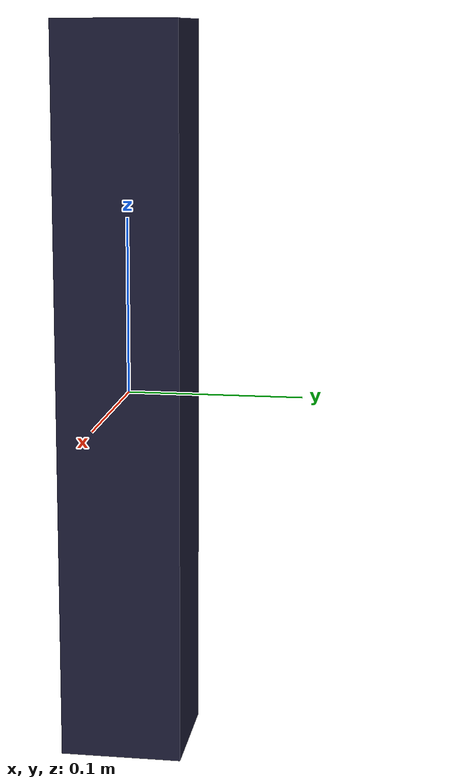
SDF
<?xml version="1.0" ?>
<sdf version="1.6">
  <model name="regolo6">
    <static>false</static>
    <link name="link">
      <collision name="collision">
        <geometry>
          <mesh>
            <uri>model://regolo6/meshes/regolo6.stl</uri>
            <scale>0.07 0.07 0.07</scale>
          </mesh>
        </geometry>
      </collision>
      <visual name="visual">
        <geometry>
          <mesh>
            <uri>model://regolo6/meshes/regolo6.stl</uri>
            <scale>0.07 0.07 0.07</scale>
          </mesh>
        </geometry>
                <material> <!-- Wheel material -->
          <ambient>0 0.65 0.19 1</ambient>
          <diffuse>0.1 0.1 0.2 1</diffuse>
          <specular>0 0 0 0</specular>
          <emissive>0 0 0 1</emissive>
        </material> <!-- End wheel material -->
      </visual>
      <inertial>
        <mass>5.0</mass>
        <inertia>
          <ixx>1</ixx>
          <ixy>0.0</ixy>
          <ixz>0.0</ixz>
          <iyy>1</iyy>
          <iyz>0.0</iyz>
          <izz>1</izz>
        </inertia>
      </inertial>
    </link>
  </model>
</sdf>
